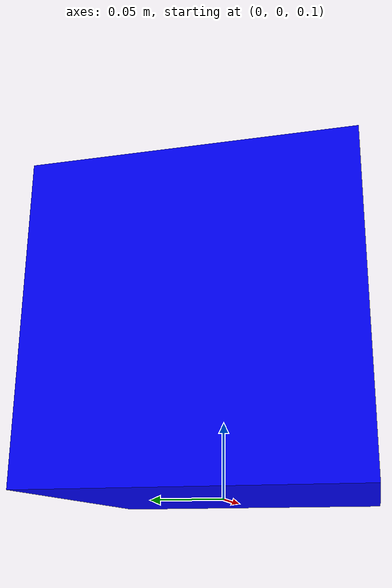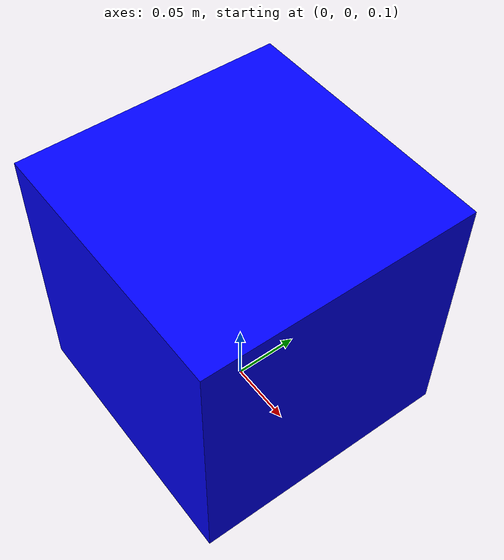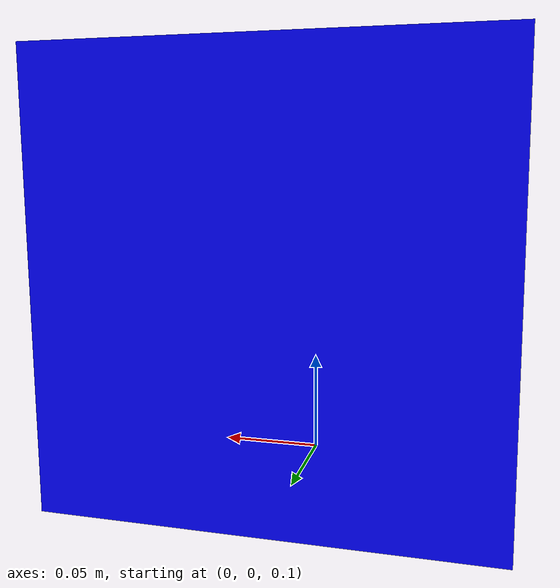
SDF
<?xml version="1.0" ?>
<sdf version="1.6">
    <!-- 3) The “vehicle” is still a 0.2×0.2×0.2 blue box,
          but now it carries a DVS sensor on its front. -->
    <model name="camera_model">
      <static>false</static>
      <!-- Keep the box’s center at z=1.0 m so it drives between the two white lanes -->
      <pose>0 0 0.2 0 0 0</pose>

      <link name="link">
        <gravity>false</gravity>
        <inertial>
            <mass>1.0</mass>
            <inertia>
            <ixx>0.1</ixx>
            <iyy>0.1</iyy>
            <izz>0.1</izz>
            </inertia>
        </inertial>

        <!-- collision block (same size as visual) -->
        <collision name="collision">
          <geometry>
            <box>
              <size>0.2 0.2 0.2</size>
            </box>
          </geometry>
        </collision>

        <!-- Visualize the blue box -->
        <visual name="vis">
          <geometry>
            <box>
              <size>0.2 0.2 0.2</size>
            </box>
          </geometry>
          <material>
            <ambient>0 0 1 1</ambient>
            <diffuse>0 0 1 1</diffuse>
          </material>
        </visual>

        <sensor name="dvs_cam" type="camera">
          <!-- place it 0.1 m above the box center (i.e. at z=1.1 m) -->
          <pose>0 0 0.1 0 0 0</pose>
          <always_on>true</always_on>
          <update_rate>30.0</update_rate>

          <!-- The “camera” sub‐element defines the virtual image plane size -->
          <camera name="__default__">
            <horizontal_fov>1.047</horizontal_fov>
            <image>
              <width>640</width>
              <height>480</height>
              <format>R8G8B8</format>
            </image>
            <clip>
              <near>0.01</near>
              <far>100</far>
            </clip>
          </camera>

          <!-- We set this to 0 if you don’t want the normal image published -->
          <visualize>1</visualize>

          <!-- The plugin tag below is exactly from the gazebo_dvs_plugin README: -->
          <!-- :contentReference[oaicite:1]{index=1} -->
          <plugin name="dvs_plugin" filename="libgazebo_dvs_plugin.so">
            <!-- cameraName and robotNamespace determine the ROS topic: -->
            <cameraName>front_cam</cameraName>
            <robotNamespace>lane_demo</robotNamespace>

            <!-- Pixel‐wise threshold (change to tune sensitivity) -->
            <eventThreshold>2</eventThreshold>

            <!-- Topic on which camera_info is published (optional) -->
            <cameraInfoTopicName>camera_info</cameraInfoTopicName>

          </plugin>
        </sensor>
        <sensor name="rgb_camera" type="camera">
          <!-- place it 0.1 m above the box center (i.e. at z=1.1 m) -->
          <!-- place it 0.1 m above the box center (i.e. at z=1.1 m) -->
          <pose>0 0 0.1 0 0 0</pose>
          <always_on>true</always_on>
          <update_rate>30.0</update_rate>
          <visualize>true</visualize>
          <camera>
            <horizontal_fov>1.047</horizontal_fov>
            <image>
              <width>640</width>
              <height>480</height>
              <format>R8G8B8</format>
            </image>
            <clip>
              <near>0.01</near>
              <far>100</far>
            </clip>
          </camera>
          <plugin name="camera_controller" filename="libgazebo_ros_camera.so">
            <robotNamespace>/camera</robotNamespace>
            <cameraName>rgb_camera</cameraName>
            <imageTopicName>rgb/image_raw</imageTopicName>
            <cameraInfoTopicName>rgb/camera_info</cameraInfoTopicName>
            <frameName>camera_link</frameName>
          </plugin>
        </sensor>
      </link>

      <!-- Add Gazebo ROS Planar Move plugin -->
      <plugin name="drive_plugin" filename="libgazebo_ros_planar_move.so">
        <ros>
          <namespace>/lane_demo</namespace>
          <remapping>cmd_vel:=cmd_vel</remapping>
        </ros>
        <bodyName>link</bodyName>
        <topicName>cmd_vel</topicName>
        <odometryTopicName>odom</odometryTopicName>
        <updateRate>100.0</updateRate>
        <linearSpeedGain>1.0</linearSpeedGain>
        <angularSpeedGain>4.0</angularSpeedGain>
      </plugin>
  </model>
</sdf>
